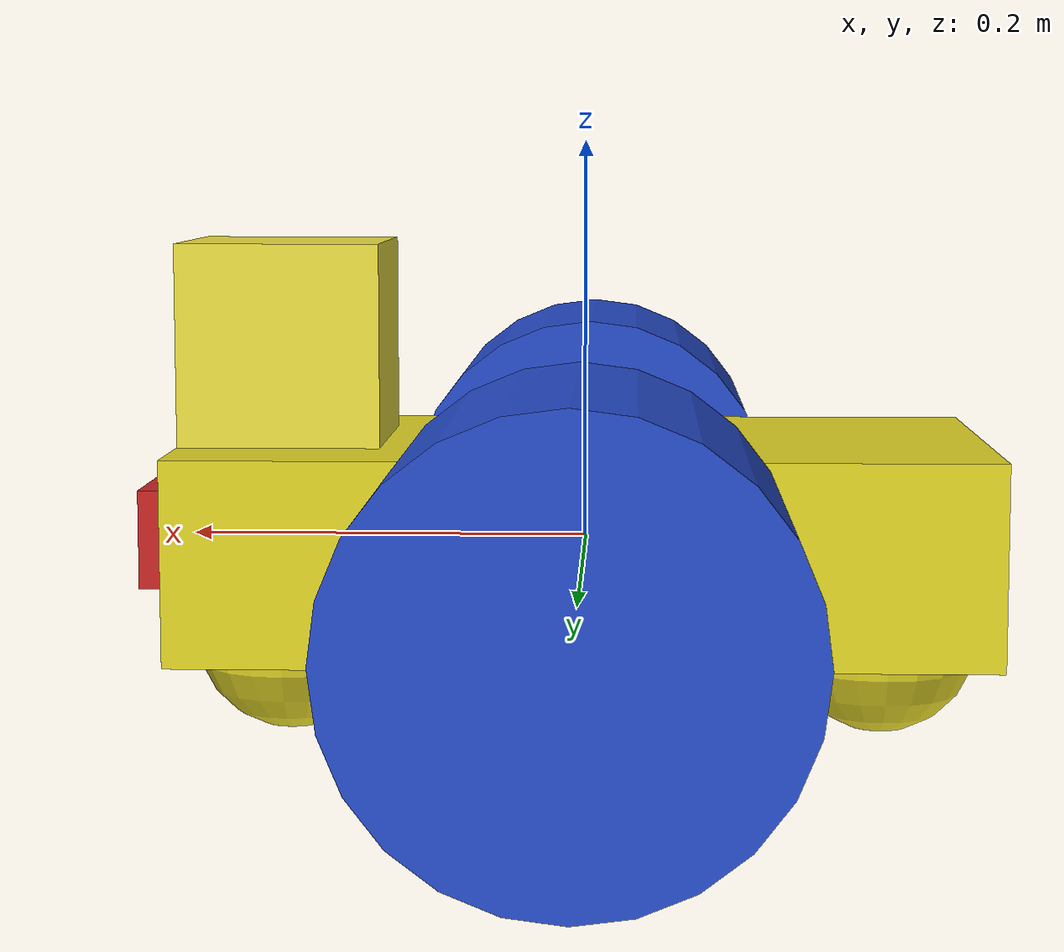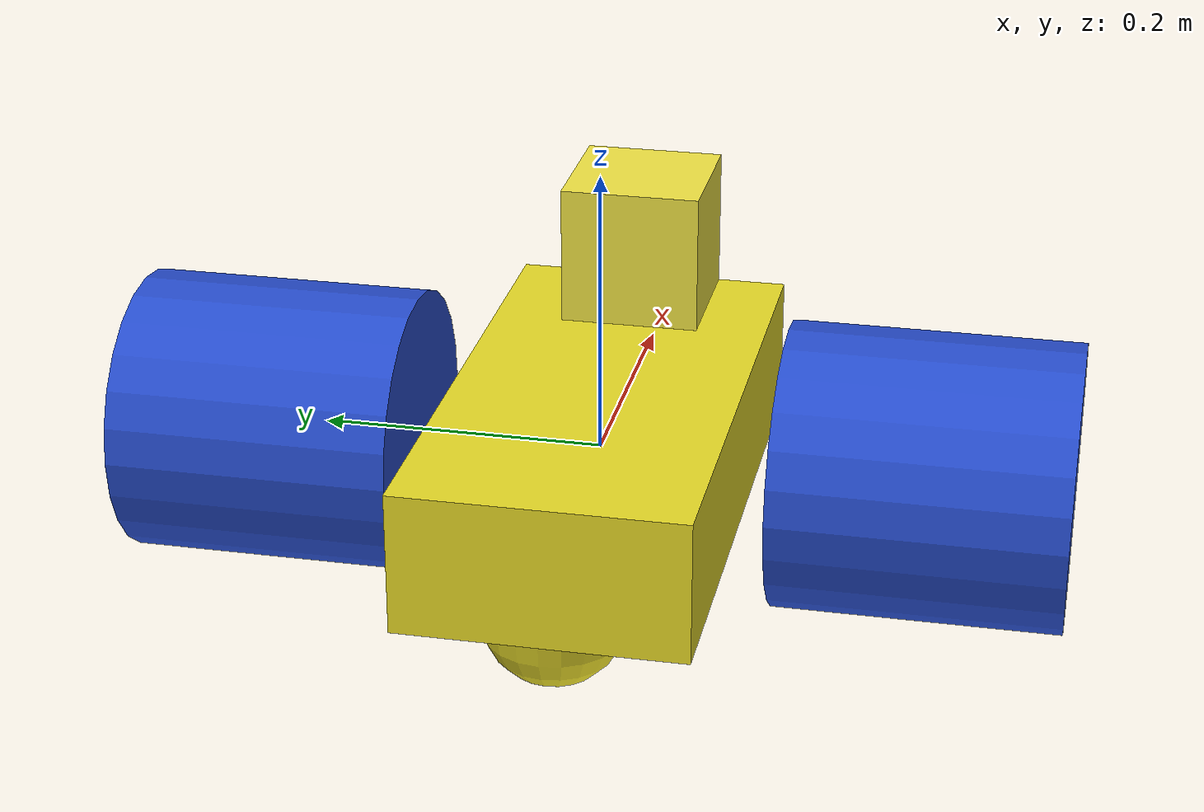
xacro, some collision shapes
<?xml version='1.0'?>

<robot name="my_robot" xmlns:xacro="http://www.ros.org/wiki/xacro">

  <xacro:include filename="$(find my_robot)/urdf/my_robot.gazebo" />

  <gazebo reference="left_wheel">
    <material>Gazebo/Blue</material>
  </gazebo>

  <gazebo reference="right_wheel">
    <material>Gazebo/Blue</material>
  </gazebo>

  <gazebo reference="camera">
    <material>Gazebo/Red</material>
  </gazebo>

  <gazebo reference="chassis">
    <material>Gazebo/Yellow</material>
  </gazebo>

  <link name="robot_footprint"></link>

  <!-- This is added on the project 4 -->
  <joint name="camera_optical_joint" type="fixed">
    <origin xyz="0 0 0" rpy="-1.5707 0 -1.5707"/>
    <parent link="camera"/> <!-- change "camera_link" to "camera" -->
    <child link="camera_link_optical"/>
  </joint>

  <link name="camera_link_optical">
  </link>
  <!-- End of adding -->

  <joint name="robot_footprint_joint" type="fixed">
    <origin xyz="0 0 0" rpy="0 0 0" />
    <parent link="robot_footprint"/>
    <child link="chassis" />
  </joint>

  <joint name="camera_joint" type="fixed">
    <origin xyz="0.2 0 0" rpy="0 0 0" />
    <parent link="chassis"/>
    <child link="camera" />
    <axis xyz="0 1 0"/>
  </joint>

  <joint name="hokuyo_joint" type="fixed">
    <origin xyz="0.15 0 0.1" rpy="0 0 0" />
    <parent link="chassis"/>
    <child link="hokuyo" />
    <axis xyz="0 1 0"/>
  </joint>

  <joint type="continuous" name="left_wheel_hinge">
    <origin xyz="0 0.23 0" rpy="0 0 0" />
    <parent link="chassis"/>
    <child link="left_wheel" />
    <axis xyz="0 1 0" rpy="0 0 0" />
    <limit effort="10000" velocity="1000" />
    <dynamics damping="1.0" friction="1.0" />
  </joint>

  <joint type="continuous" name="right_wheel_hinge">
    <origin xyz="0 -0.23 0" rpy="0 0 0" />
    <parent link="chassis"/>
    <child link="right_wheel" />
    <axis xyz="0 1 0" rpy="0 0 0" />
    <limit effort="10000" velocity="1000" />
    <dynamics damping="1.0" friction="1.0" />
  </joint>

  <link name="camera">
    <inertial>
      <mass value="0.1"/>
      <origin xyz="0 0 0" rpy="0 0 0"/>
      <inertia
        ixx="1e-6" ixy="0.0" ixz="0.0"
        iyy="1e-6" iyz="0.0"
        izz="1e-6"
      />
    </inertial>

    <collision>
      <origin xyz="0 0 0" rpy="0 0 0"/>
      <geometry>
        <box size="0.05 0.05 0.05"/>
      </geometry>
    </collision>

    <visual>
      <origin xyz="0 0 0" rpy="0 0 0"/>
      <geometry>
        <box size="0.05 0.05 0.05"/>
      </geometry>
    </visual>

  </link>

  <link name="hokuyo">
    <inertial>
      <mass value="1e-5"/>
      <origin xyz="0 0 0" rpy="0 0 0"/>
      <inertia
        ixx="1e-6" ixy="0.0" ixz="0.0"
        iyy="1e-6" iyz="0.0"
        izz="1e-6"
      />
    </inertial>

    <collision>
      <origin xyz="0 0 0" rpy="0 0 0"/>
      <geometry>
        <box size="0.1 0.1 0.1"/>
      </geometry>
    </collision>

    <visual>
      <origin xyz="0 0 0" rpy="0 0 0"/>
      <geometry>
        <mesh filename="package://my_robot/meshes/hokuyo.dae"/>
      </geometry>
    </visual>

  </link>

  <link name="left_wheel">
    <inertial>
      <mass value="5"/>
      <origin xyz="0 0 0" rpy="0 1.5707 1.5707"/>
      <inertia
        ixx="0.1" ixy="0.0" ixz="0.0"
        iyy="0.1" iyz="0.0"
        izz="0.1"
      />
    </inertial>

    <collision>
      <origin xyz="0 0 0" rpy="0 1.5707 1.5707"/>
      <geometry>
        <cylinder radius="0.1" length="0.2"/>
      </geometry>
    </collision>

    <visual>
      <origin xyz="0 0 0" rpy="0 1.5707 1.5707"/>
      <geometry>
        <cylinder radius="0.1" length="0.2"/>
      </geometry>
    </visual>

  </link>

  <link name="right_wheel">
    <inertial>
      <mass value="5"/>
      <origin xyz="0 0 0" rpy="0 1.5707 1.5707"/>
      <inertia
        ixx="0.1" ixy="0.0" ixz="0.0"
        iyy="0.1" iyz="0.0"
        izz="0.1"
      />
    </inertial>

    <collision>
      <origin xyz="0 0 0" rpy="0 1.5707 1.5707"/>
      <geometry>
        <cylinder radius="0.1" length="0.2"/>
      </geometry>
    </collision>

    <visual>
      <origin xyz="0 0 0" rpy="0 1.5707 1.5707"/>
      <geometry>
        <cylinder radius="0.1" length="0.2"/>
      </geometry>
    </visual>

  </link>

  <link name='chassis'>
    <pose>0 0 0.1 0 0 0</pose>

    <inertial>
      <mass value="15.0"/>
      <origin xyz="0.0 0 0" rpy=" 0 0 0"/>
      <inertia
          ixx="0.1" ixy="0" ixz="0"
          iyy="0.1" iyz="0"
          izz="0.1"
      />
    </inertial>

    <collision name='collision'>
      <origin xyz="0 0 0" rpy=" 0 0 0"/>
      <geometry>
        <box size=".4 .2 .1"/>
      </geometry>
    </collision>

    <visual name='chassis_visual'>
      <origin xyz="0 0 0" rpy=" 0 0 0"/>
      <geometry>
        <box size=".4 .2 .1"/>
      </geometry>
    </visual>

    <collision name='back_caster_collision'>
      <origin xyz="-0.15 0 -0.05" rpy=" 0 0 0"/>
      <geometry>
        <sphere radius="0.0499"/>
      </geometry>
    </collision>

    <visual name='back_caster_visual'>
      <origin xyz="-0.15 0 -0.05" rpy=" 0 0 0"/>
      <geometry>
        <sphere radius="0.05"/>
      </geometry>
    </visual>

    <collision name='front_caster_collision'>
      <origin xyz="0.15 0 -0.05" rpy=" 0 0 0"/>
      <geometry>
        <sphere radius="0.0499"/>
      </geometry>
    </collision>

    <visual name='front_caster_visual'>
      <origin xyz="0.15 0 -0.05" rpy=" 0 0 0"/>
      <geometry>
        <sphere radius="0.05"/>
      </geometry>
    </visual>

  </link>

</robot>
